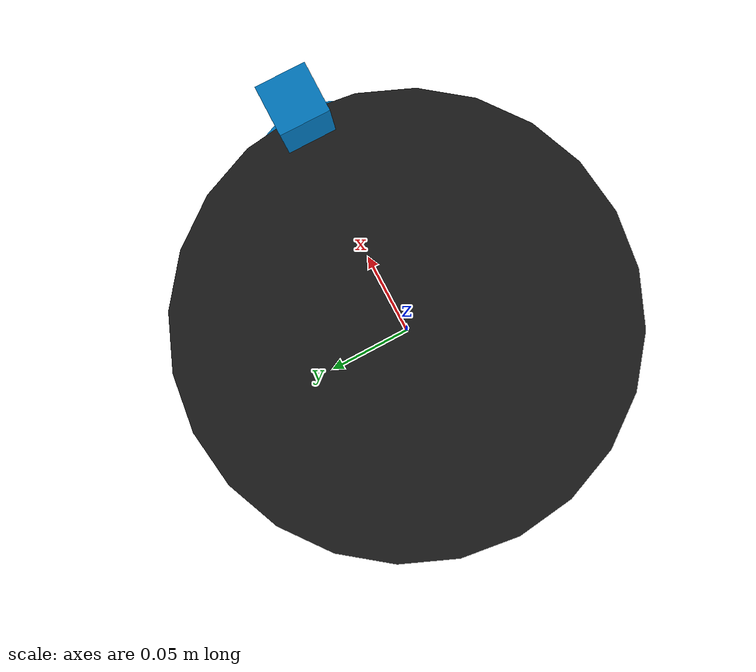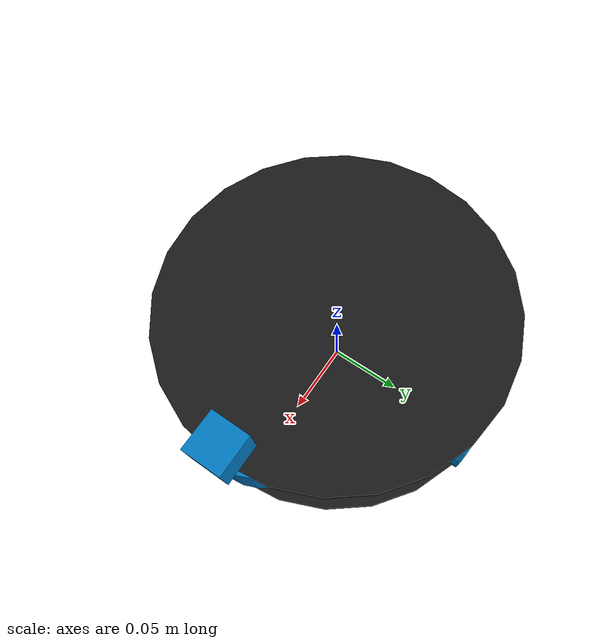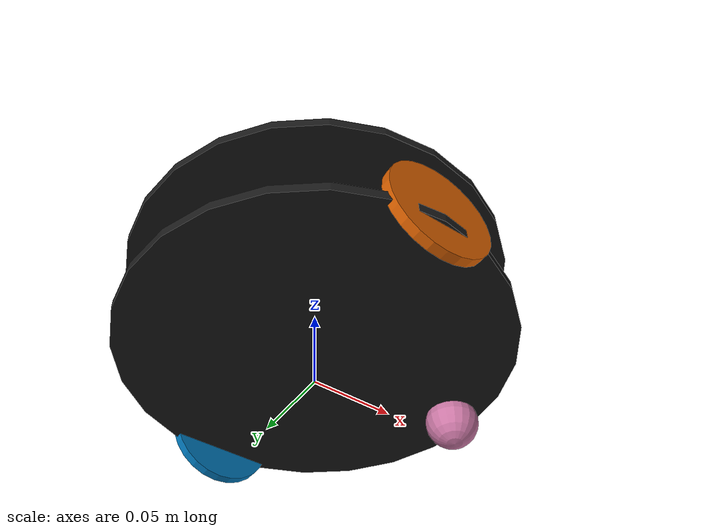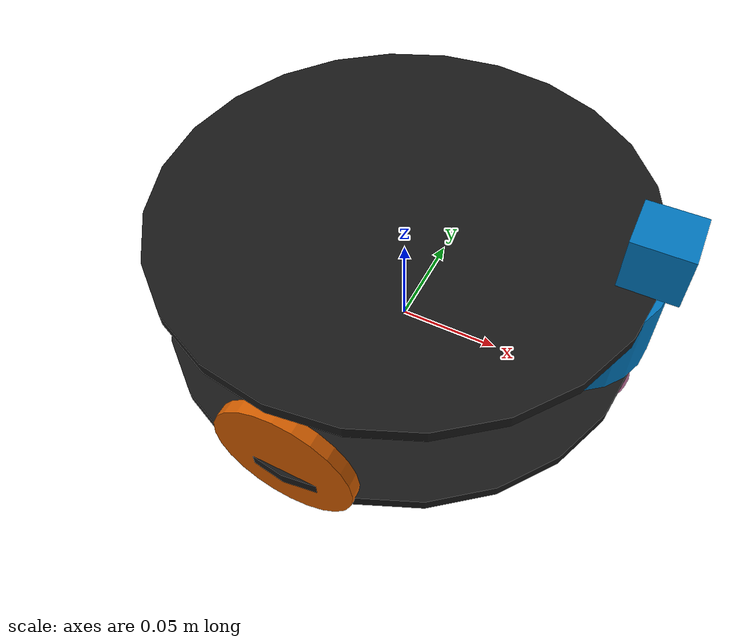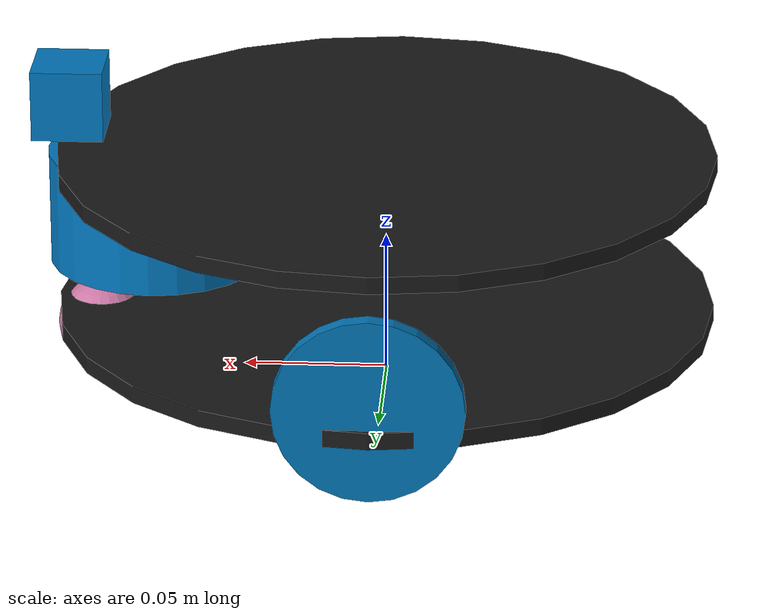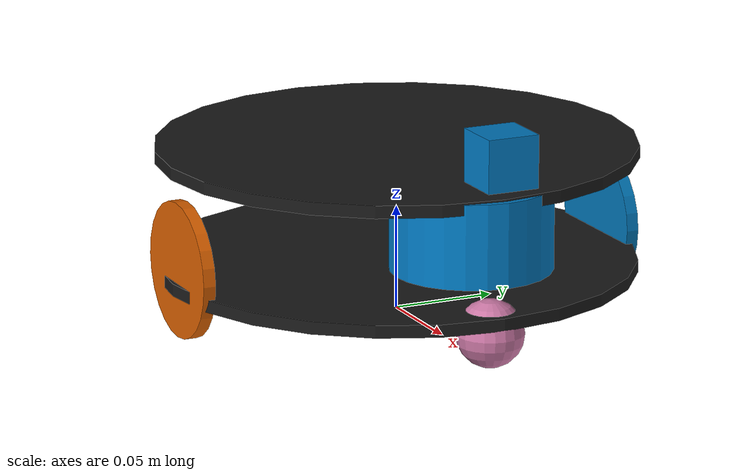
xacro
<?xml version="1.0"?>
<robot name="auldbot" xmlns:xacro="http://www.ros.org/wiki/xacro">

  <!-- ===================== HARDWARE PARAMETERS ===================== -->
  <xacro:arg name="serial_port"    default="/dev/auldbot_servos"/>
  <xacro:arg name="baud_rate"      default="1000000"/>
  <xacro:arg name="left_wheel_id"  default="7"/>
  <xacro:arg name="right_wheel_id" default="9"/>
  <xacro:arg name="velocity_scale" default="674.1"/>
  <xacro:arg name="acceleration"   default="0"/>

  <!-- ===================== MEASUREMENTS ===================== -->
  <!--
    base_link is at wheel axle height above the ground (REP-105 convention).
    All z positions in base_link frame = (height above ground) - wheel_radius.
  -->

  <!-- Heights above ground -->
  <xacro:property name="base_plate_top_height" value="0.016"/>
  <xacro:property name="lidar_ground_height"   value="0.054"/>
  <xacro:property name="cam_ground_height"     value="0.094"/>

  <!-- Plate geometry -->
  <xacro:property name="chassis_radius"  value="0.115"/>
  <xacro:property name="plate_thickness" value="0.006"/>
  <xacro:property name="plate_gap"       value="0.050"/>
  <xacro:property name="plate_mass"      value="0.01"/>  <!-- dummy -->

  <!-- Drive wheels (STS3215) -->
  <xacro:property name="wheel_radius"     value="0.0325"/>
  <xacro:property name="wheel_width"      value="0.006"/>
  <xacro:property name="wheel_mass"       value="0.05"/>  <!-- dummy -->
  <xacro:property name="wheel_separation" value="0.22"/>
  <xacro:property name="axle_z"           value="0.0095"/>

  <!-- Caster -->
  <xacro:property name="caster_radius" value="0.016"/>  <!-- assumed -->
  <xacro:property name="caster_mass"   value="0.01"/>   <!-- dummy -->
  <xacro:property name="caster_x"      value="0.100"/>  <!-- assumed -->
  <xacro:property name="caster_z"      value="${-caster_radius/2}"/>  <!-- assumed -->

  <!-- Lidar -->
  <xacro:property name="lidar_x" value="0.080"/>
  <xacro:property name="lidar_z" value="0.038"/>

  <!-- Camera -->
  <xacro:property name="cam_x" value="0.110"/>
  <xacro:property name="cam_z" value="0.021"/>

  <!-- ===================== DERIVED POSITIONS (base_link frame) ===================== -->

  <xacro:property name="base_plate_z" value="${-axle_z}"/>
  <xacro:property name="top_plate_z"  value="${plate_gap + plate_thickness}"/>

  <!-- ===================== Materials ===================== -->
  <material name="black"><color rgba="0.1 0.1 0.1 1.0"/></material>
  <material name="blue"><color rgba="0.0 0.471 0.749 1.0"/></material>

  <!-- ===================== LINKS ===================== -->

  <link name="base_footprint"/>

  <link name="base_link"/>

  <joint name="base_footprint_joint" type="fixed">
    <parent link="base_footprint"/>
    <child  link="base_link"/>
    <origin xyz="0 0 ${wheel_radius}" rpy="0 0 0"/>
  </joint>

  <link name="base_plate_link">
    <visual>
      <geometry><cylinder radius="${chassis_radius}" length="${plate_thickness}"/></geometry>
      <material name="black"/>
    </visual>
    <collision>
      <geometry><cylinder radius="${chassis_radius}" length="${plate_thickness}"/></geometry>
    </collision>
    <inertial>
      <mass value="${plate_mass}"/>
      <inertia ixx="0.000033" ixy="0" ixz="0"
               iyy="0.000033" iyz="0"
               izz="0.000066"/>
    </inertial>
  </link>

  <joint name="base_plate_joint" type="fixed">
    <parent link="base_link"/>
    <child  link="base_plate_link"/>
    <origin xyz="0 0 ${base_plate_z}" rpy="0 0 0"/>
  </joint>

  <link name="top_plate_link">
    <visual>
      <geometry><cylinder radius="${chassis_radius}" length="${plate_thickness}"/></geometry>
      <material name="black"/>
    </visual>
    <collision>
      <geometry><cylinder radius="${chassis_radius}" length="${plate_thickness}"/></geometry>
    </collision>
    <inertial>
      <mass value="${plate_mass}"/>
      <inertia ixx="0.000033" ixy="0" ixz="0"
               iyy="0.000033" iyz="0"
               izz="0.000066"/>
    </inertial>
  </link>

  <joint name="top_plate_joint" type="fixed">
    <parent link="base_plate_link"/>
    <child  link="top_plate_link"/>
    <origin xyz="0 0 ${top_plate_z}" rpy="0 0 0"/>
  </joint>

  <xacro:macro name="wheel" params="name y_reflect">
    <link name="${name}_wheel_link">
      <visual>
        <geometry><cylinder radius="${wheel_radius}" length="${wheel_width}"/></geometry>
        <origin xyz="0 0 0" rpy="${pi/2} 0 0"/>
      </visual>
      <collision>
        <geometry><cylinder radius="${wheel_radius}" length="${wheel_width}"/></geometry>
        <origin xyz="0 0 0" rpy="${pi/2} 0 0"/>
      </collision>
      <inertial>
        <mass value="${wheel_mass}"/>
        <inertia ixx="0.000010" ixy="0" ixz="0"
                 iyy="0.000020" iyz="0"
                 izz="0.000010"/>
      </inertial>
    </link>

    <joint name="${name}_wheel_joint" type="continuous">
      <parent link="base_link"/>
      <child  link="${name}_wheel_link"/>
      <origin xyz="0 ${y_reflect * wheel_separation / 2} 0" rpy="0 0 0"/>
      <axis xyz="0 1 0"/>
    </joint>
  </xacro:macro>

  <xacro:wheel name="left"  y_reflect=" 1"/>
  <xacro:wheel name="right" y_reflect="-1"/>

  <link name="caster_link">
    <visual>
      <geometry><sphere radius="${caster_radius}"/></geometry>
    </visual>
    <collision>
      <geometry><sphere radius="${caster_radius}"/></geometry>
    </collision>
    <inertial>
      <mass value="${caster_mass}"/>
      <!-- dummy inertia -->
      <inertia ixx="0.000001" ixy="0" ixz="0"
               iyy="0.000001" iyz="0"
               izz="0.000001"/>
    </inertial>
  </link>

  <joint name="caster_joint" type="fixed">
    <parent link="base_plate_link"/>
    <child  link="caster_link"/>
    <origin xyz="${caster_x} 0 ${caster_z}" rpy="0 0 0"/>
  </joint>

  <link name="lidar_link">
    <visual>
      <geometry><cylinder radius="0.038" length="0.04"/></geometry>
      <material name="blue"/>
    </visual>
  </link>

  <joint name="lidar_joint" type="fixed">
    <parent link="base_plate_link"/>
    <child  link="lidar_link"/>
    <origin xyz="${lidar_x} 0 ${lidar_z}" rpy="0 0 ${pi/2}"/>
  </joint>

  <!-- Scan frame can be rotated independently from physical lidar mounting -->
  <link name="lidar_scan_link"/>
  <joint name="lidar_scan_joint" type="fixed">
    <parent link="lidar_link"/>
    <child  link="lidar_scan_link"/>
    <origin xyz="0 0 0" rpy="0 0 ${pi}"/>
  </joint>

  <link name="camera_link">
    <visual>
      <geometry><box size="0.025 0.025 0.025"/></geometry>
      <material name="blue"/>
    </visual>
  </link>

  <joint name="camera_joint" type="fixed">
    <parent link="top_plate_link"/>
    <child  link="camera_link"/>
    <origin xyz="${cam_x} 0 ${cam_z}" rpy="0 0 0"/>
  </joint>

  <link name="camera_optical_link"/>
  <joint name="camera_optical_joint" type="fixed">
    <parent link="camera_link"/>
    <child  link="camera_optical_link"/>
    <origin xyz="0 0 0" rpy="${-pi/2} 0 ${-pi/2}"/>
  </joint>

  <!-- ===================== ROS2 CONTROL ===================== -->

  <ros2_control name="auldbot_hardware" type="system">
    <hardware>
      <plugin>auldbot_hardware/AuldbotHardware</plugin>
      <param name="serial_port">$(arg serial_port)</param>
      <param name="baud_rate">$(arg baud_rate)</param>
      <param name="left_wheel_id">$(arg left_wheel_id)</param>
      <param name="right_wheel_id">$(arg right_wheel_id)</param>
      <param name="velocity_scale">$(arg velocity_scale)</param>
      <param name="acceleration">$(arg acceleration)</param>
    </hardware>

    <joint name="left_wheel_joint">
      <command_interface name="velocity"/>
      <state_interface   name="velocity"/>
      <state_interface   name="position"/>
    </joint>

    <joint name="right_wheel_joint">
      <command_interface name="velocity"/>
      <state_interface   name="velocity"/>
      <state_interface   name="position"/>
    </joint>
  </ros2_control>

</robot>
